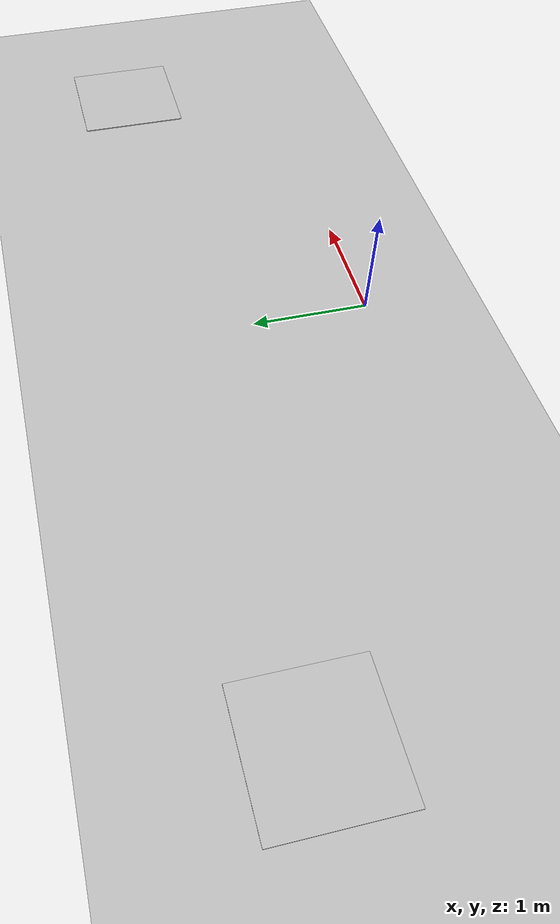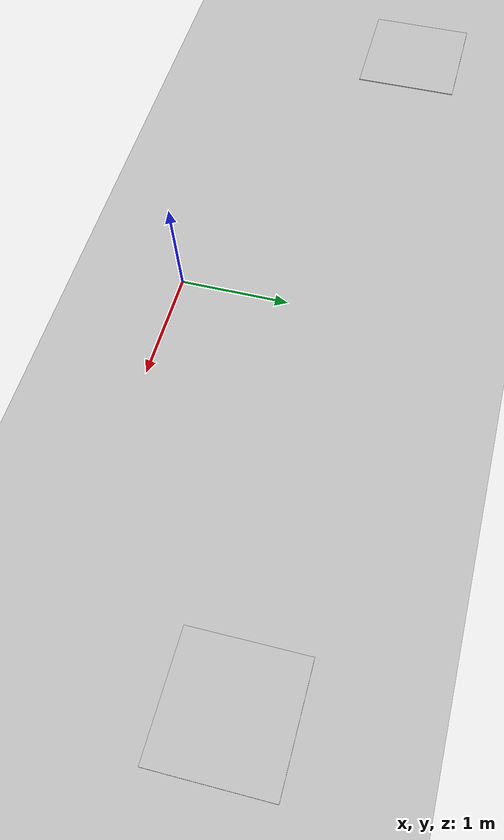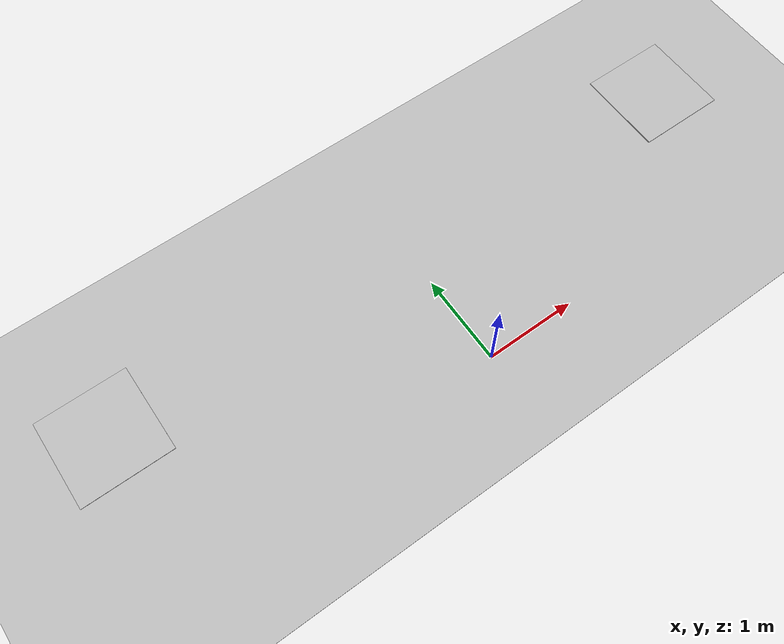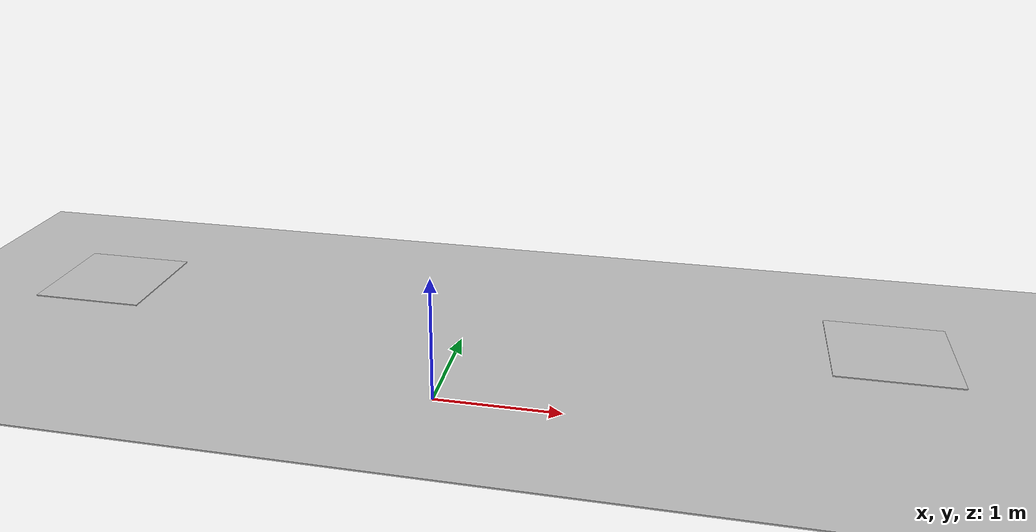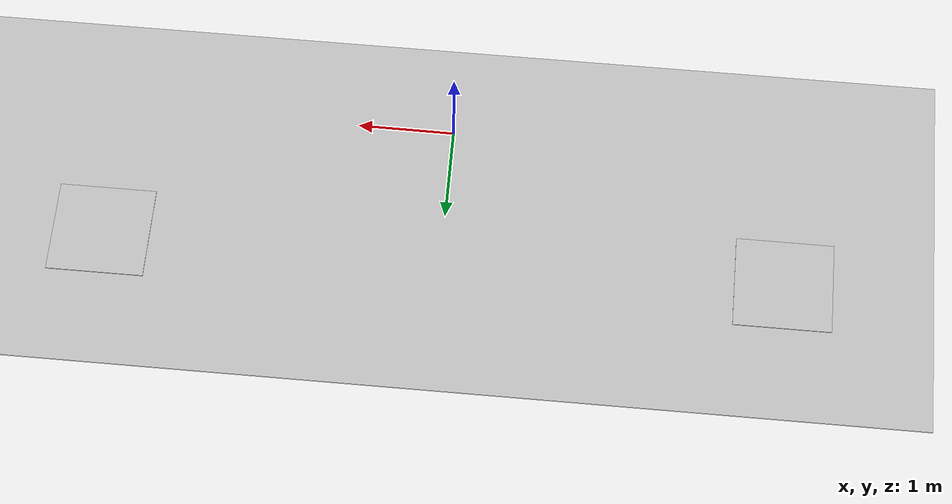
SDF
<?xml version="1.0" ?>
<sdf version="1.5">
  <world name="default">
    <!-- 动力学库 -->
    <physics type='ode'>
      <gravity>0 0 -9.8066</gravity>
      <ode>
        <solver>
          <type>quick</type>
          <iters>10</iters>
          <sor>1.3</sor>
          <use_dynamic_moi_rescaling>0</use_dynamic_moi_rescaling>
        </solver>
        <constraints>
          <cfm>0.00001</cfm>
          <erp>0.2</erp>
          <contact_max_correcting_vel>1000</contact_max_correcting_vel>
          <contact_surface_layer>0.01</contact_surface_layer>
        </constraints>
      </ode>
      <max_step_size>0.004</max_step_size>
      <real_time_factor>1.0</real_time_factor>
      <real_time_update_rate>250</real_time_update_rate>
      <magnetic_field>6.0e-6 2.3e-5 -4.2e-5</magnetic_field>
    </physics>

    <!-- 初始视角 -->
    <gui fullscreen='0'>
      <camera name='user_camera'>
        <pose>-13.0 0.0 12.0 0 0.75 0.0</pose>
        <view_controller>orbit</view_controller>
      </camera>
    </gui>

    <!-- 光源 -->
    <light type="directional" name="sun">
      <cast_shadows>false</cast_shadows>
      <pose>0 0 100 0 0 0</pose>
      <diffuse>0.8 0.8 0.8 1</diffuse>
      <specular>0.9 0.9 0.9 1</specular>
      <attenuation>
        <range>1000</range>
        <constant>0.9</constant>
        <linear>0.01</linear>
        <quadratic>0.001</quadratic>
      </attenuation>
      <direction>0.2 0.2 -0.9</direction>
    </light>

    <scene>
      <shadows>0</shadows>
    </scene>

    <!-- A ground plane -->
    <include>
      <uri>model://ground_plane</uri>
    </include>

    <!-- 装饰 -->
    <model name='yundrone_logo'>
      <static>true</static>
      <link name="yundrone_logo">
        <pose frame=''> 0.0 0.0 0.0 0.0 0.0 0.0</pose>
        <visual name="visual">
            <cast_shadows>false</cast_shadows>
            <geometry>
              <box>
                <size>20.0 20.0 0.01</size>
              </box>
            </geometry>
            <material>
              <script>
                <uri>model://yundrone_logo/yundrone_logo.material</uri>
                <name>yundrone_logo</name>
              </script>
            </material>
        </visual>
      </link>
    </model>

    <model name='H_takeoff'>
      <static>true</static>
      <link name="H_takeoff">
        <pose frame=''> -3.5 1.5 0.01 0.0 0.0 0.0</pose>
        <visual name="visual">
            <cast_shadows>false</cast_shadows>
            <geometry>
              <box>
                <size>1.0 1.0 0.01</size>
              </box>
            </geometry>
            <material>
              <script>
                <uri>model://land_marker/land_marker.material</uri>
                <name>land_marker_1</name>
              </script>
            </material>
        </visual>
      </link>
    </model>

    <model name='H_land'>
      <static>true</static>
      <link name="H_l">
        <pose frame=''> 3.5 1.5 0.01 0.0 0.0 0.0</pose>
        <visual name="visual">
            <cast_shadows>false</cast_shadows>
            <geometry>
              <box>
                <size>1.0 1.0 0.01</size>
              </box>
            </geometry>
            <material>
              <script>
                <uri>model://land_marker/land_marker.material</uri>
                <name>land_marker_2</name>
              </script>
            </material>
        </visual>
      </link>
    </model>

  </world>
</sdf>
